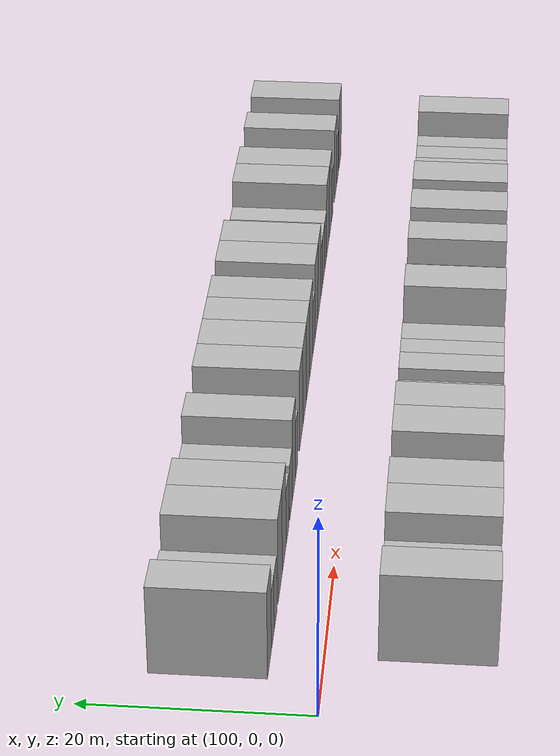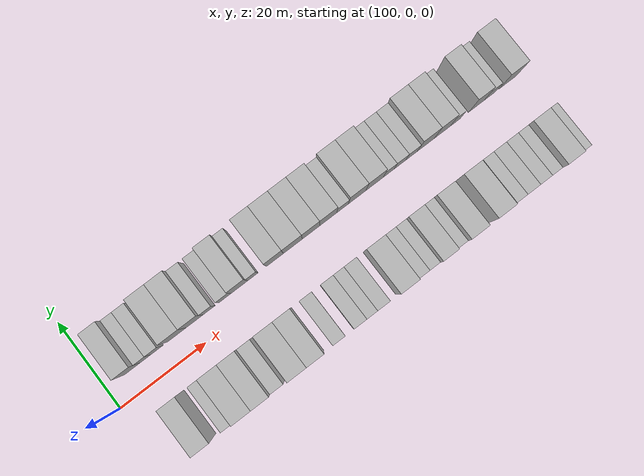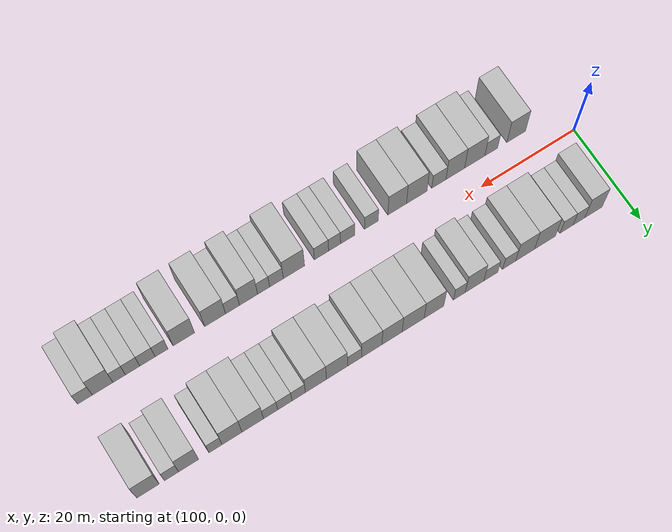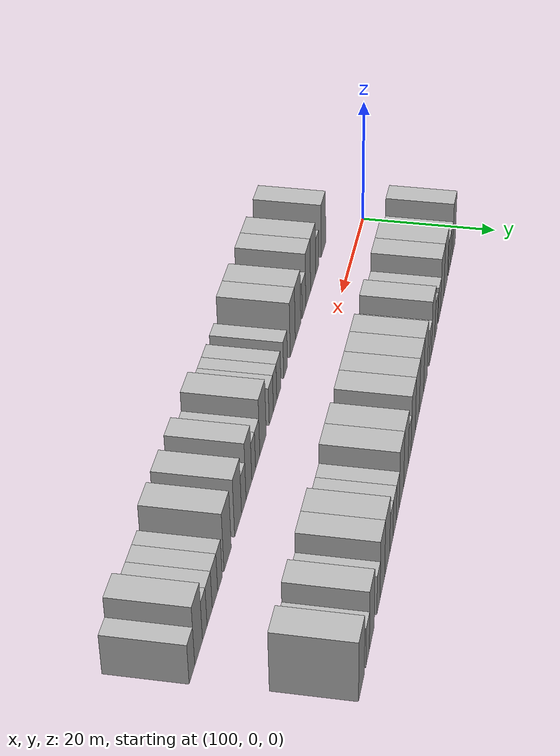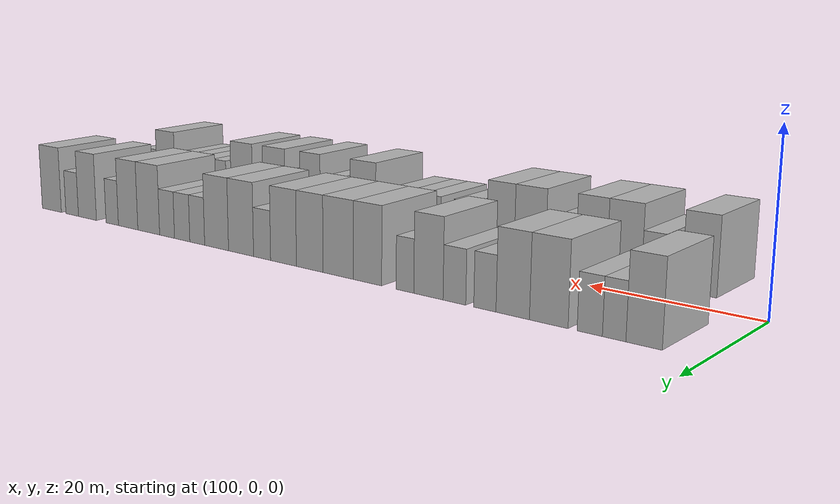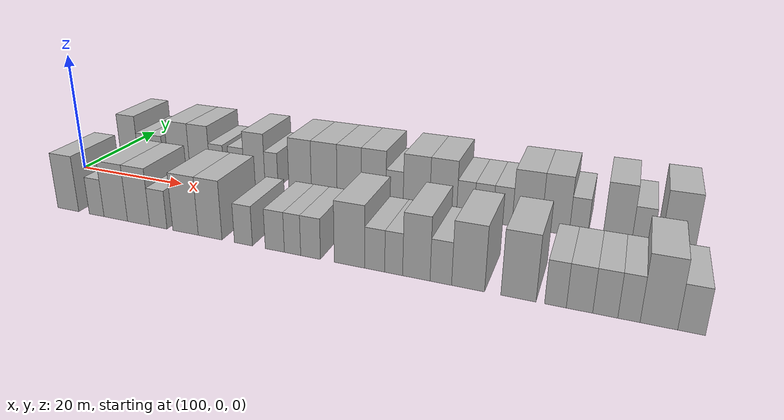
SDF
<sdf version="1.6">
 <world name="default">
  <model name="building_25">
   <static>1</static>
   <pose>106.1985 9.5000 0 0.000000 0.000000 1.570796</pose>
   <link name="link">
    <pose>0 0 4.50 0 0 0</pose>
    <collision name="collision"><geometry><box><size>10.0000 3.7347 9.0000</size></box></geometry></collision>
    <visual name="visual">
     <cast_shadows>0</cast_shadows>
     <geometry><box><size>10.0000 3.7347 9.0000</size></box></geometry>
     <material>
      <script>
       <uri>model://HANNAS_wall/materials/scripts</uri>
       <uri>model://HANNAS_wall/materials/textures</uri>
       <name>vrc/HANNAS_wall</name>
      </script>
     </material>
    </visual>
   </link>
  </model>
  <model name="building_26">
   <static>1</static>
   <pose>109.3079 9.5000 0 0.000000 0.000000 1.570796</pose>
   <link name="link">
    <pose>0 0 3.00 0 0 0</pose>
    <collision name="collision"><geometry><box><size>10.0000 2.4841 6.0000</size></box></geometry></collision>
    <visual name="visual">
     <cast_shadows>0</cast_shadows>
     <geometry><box><size>10.0000 2.4841 6.0000</size></box></geometry>
     <material>
      <script>
       <uri>model://HANNAS_wall/materials/scripts</uri>
       <uri>model://HANNAS_wall/materials/textures</uri>
       <name>vrc/HANNAS_wall</name>
      </script>
     </material>
    </visual>
   </link>
  </model>
  <model name="building_27">
   <static>1</static>
   <pose>111.9256 9.5000 0 0.000000 0.000000 1.570796</pose>
   <link name="link">
    <pose>0 0 3.00 0 0 0</pose>
    <collision name="collision"><geometry><box><size>10.0000 2.7511 6.0000</size></box></geometry></collision>
    <visual name="visual">
     <cast_shadows>0</cast_shadows>
     <geometry><box><size>10.0000 2.7511 6.0000</size></box></geometry>
     <material>
      <script>
       <uri>model://HANNAS_wall/materials/scripts</uri>
       <uri>model://HANNAS_wall/materials/textures</uri>
       <name>vrc/HANNAS_wall</name>
      </script>
     </material>
    </visual>
   </link>
  </model>
  <model name="building_28">
   <static>1</static>
   <pose>116.5041 9.5000 0 0.000000 0.000000 1.570796</pose>
   <link name="link">
    <pose>0 0 4.50 0 0 0</pose>
    <collision name="collision"><geometry><box><size>10.0000 4.4059 9.0000</size></box></geometry></collision>
    <visual name="visual">
     <cast_shadows>0</cast_shadows>
     <geometry><box><size>10.0000 4.4059 9.0000</size></box></geometry>
     <material>
      <script>
       <uri>model://HANNAS_wall/materials/scripts</uri>
       <uri>model://HANNAS_wall/materials/textures</uri>
       <name>vrc/HANNAS_wall</name>
      </script>
     </material>
    </visual>
   </link>
  </model>
  <model name="building_29">
   <static>1</static>
   <pose>120.6980 9.5000 0 0.000000 0.000000 1.570796</pose>
   <link name="link">
    <pose>0 0 4.50 0 0 0</pose>
    <collision name="collision"><geometry><box><size>10.0000 3.9819 9.0000</size></box></geometry></collision>
    <visual name="visual">
     <cast_shadows>0</cast_shadows>
     <geometry><box><size>10.0000 3.9819 9.0000</size></box></geometry>
     <material>
      <script>
       <uri>model://HANNAS_wall/materials/scripts</uri>
       <uri>model://HANNAS_wall/materials/textures</uri>
       <name>vrc/HANNAS_wall</name>
      </script>
     </material>
    </visual>
   </link>
  </model>
  <model name="building_30">
   <static>1</static>
   <pose>124.0550 9.5000 0 0.000000 0.000000 1.570796</pose>
   <link name="link">
    <pose>0 0 3.00 0 0 0</pose>
    <collision name="collision"><geometry><box><size>10.0000 2.7321 6.0000</size></box></geometry></collision>
    <visual name="visual">
     <cast_shadows>0</cast_shadows>
     <geometry><box><size>10.0000 2.7321 6.0000</size></box></geometry>
     <material>
      <script>
       <uri>model://HANNAS_wall/materials/scripts</uri>
       <uri>model://HANNAS_wall/materials/textures</uri>
       <name>vrc/HANNAS_wall</name>
      </script>
     </material>
    </visual>
   </link>
  </model>
  <model name="building_31">
   <static>1</static>
   <pose>127.8706 9.5000 0 0.000000 0.000000 1.570796</pose>
   <link name="link">
    <pose>0 0 3.00 0 0 0</pose>
    <collision name="collision"><geometry><box><size>10.0000 2.8991 6.0000</size></box></geometry></collision>
    <visual name="visual">
     <cast_shadows>0</cast_shadows>
     <geometry><box><size>10.0000 2.8991 6.0000</size></box></geometry>
     <material>
      <script>
       <uri>model://HANNAS_wall/materials/scripts</uri>
       <uri>model://HANNAS_wall/materials/textures</uri>
       <name>vrc/HANNAS_wall</name>
      </script>
     </material>
    </visual>
   </link>
  </model>
  <model name="building_32">
   <static>1</static>
   <pose>131.2488 9.5000 0 0.000000 0.000000 1.570796</pose>
   <link name="link">
    <pose>0 0 4.50 0 0 0</pose>
    <collision name="collision"><geometry><box><size>10.0000 3.8573 9.0000</size></box></geometry></collision>
    <visual name="visual">
     <cast_shadows>0</cast_shadows>
     <geometry><box><size>10.0000 3.8573 9.0000</size></box></geometry>
     <material>
      <script>
       <uri>model://HANNAS_wall/materials/scripts</uri>
       <uri>model://HANNAS_wall/materials/textures</uri>
       <name>vrc/HANNAS_wall</name>
      </script>
     </material>
    </visual>
   </link>
  </model>
  <model name="building_33">
   <static>1</static>
   <pose>134.3775 9.5000 0 0.000000 0.000000 1.570796</pose>
   <link name="link">
    <pose>0 0 3.00 0 0 0</pose>
    <collision name="collision"><geometry><box><size>10.0000 2.4002 6.0000</size></box></geometry></collision>
    <visual name="visual">
     <cast_shadows>0</cast_shadows>
     <geometry><box><size>10.0000 2.4002 6.0000</size></box></geometry>
     <material>
      <script>
       <uri>model://HANNAS_wall/materials/scripts</uri>
       <uri>model://HANNAS_wall/materials/textures</uri>
       <name>vrc/HANNAS_wall</name>
      </script>
     </material>
    </visual>
   </link>
  </model>
  <model name="building_34">
   <static>1</static>
   <pose>139.5908 9.5000 0 0.000000 0.000000 1.570796</pose>
   <link name="link">
    <pose>0 0 4.50 0 0 0</pose>
    <collision name="collision"><geometry><box><size>10.0000 4.0264 9.0000</size></box></geometry></collision>
    <visual name="visual">
     <cast_shadows>0</cast_shadows>
     <geometry><box><size>10.0000 4.0264 9.0000</size></box></geometry>
     <material>
      <script>
       <uri>model://HANNAS_wall/materials/scripts</uri>
       <uri>model://HANNAS_wall/materials/textures</uri>
       <name>vrc/HANNAS_wall</name>
      </script>
     </material>
    </visual>
   </link>
  </model>
  <model name="building_35">
   <static>1</static>
   <pose>143.8461 9.5000 0 0.000000 0.000000 1.570796</pose>
   <link name="link">
    <pose>0 0 4.50 0 0 0</pose>
    <collision name="collision"><geometry><box><size>10.0000 4.4843 9.0000</size></box></geometry></collision>
    <visual name="visual">
     <cast_shadows>0</cast_shadows>
     <geometry><box><size>10.0000 4.4843 9.0000</size></box></geometry>
     <material>
      <script>
       <uri>model://HANNAS_wall/materials/scripts</uri>
       <uri>model://HANNAS_wall/materials/textures</uri>
       <name>vrc/HANNAS_wall</name>
      </script>
     </material>
    </visual>
   </link>
  </model>
  <model name="building_36">
   <static>1</static>
   <pose>148.1364 9.5000 0 0.000000 0.000000 1.570796</pose>
   <link name="link">
    <pose>0 0 4.50 0 0 0</pose>
    <collision name="collision"><geometry><box><size>10.0000 4.0963 9.0000</size></box></geometry></collision>
    <visual name="visual">
     <cast_shadows>0</cast_shadows>
     <geometry><box><size>10.0000 4.0963 9.0000</size></box></geometry>
     <material>
      <script>
       <uri>model://HANNAS_wall/materials/scripts</uri>
       <uri>model://HANNAS_wall/materials/textures</uri>
       <name>vrc/HANNAS_wall</name>
      </script>
     </material>
    </visual>
   </link>
  </model>
  <model name="building_37">
   <static>1</static>
   <pose>152.2418 9.5000 0 0.000000 0.000000 1.570796</pose>
   <link name="link">
    <pose>0 0 4.50 0 0 0</pose>
    <collision name="collision"><geometry><box><size>10.0000 4.1145 9.0000</size></box></geometry></collision>
    <visual name="visual">
     <cast_shadows>0</cast_shadows>
     <geometry><box><size>10.0000 4.1145 9.0000</size></box></geometry>
     <material>
      <script>
       <uri>model://HANNAS_wall/materials/scripts</uri>
       <uri>model://HANNAS_wall/materials/textures</uri>
       <name>vrc/HANNAS_wall</name>
      </script>
     </material>
    </visual>
   </link>
  </model>
  <model name="building_38">
   <static>1</static>
   <pose>155.6980 9.5000 0 0.000000 0.000000 1.570796</pose>
   <link name="link">
    <pose>0 0 3.00 0 0 0</pose>
    <collision name="collision"><geometry><box><size>10.0000 2.7979 6.0000</size></box></geometry></collision>
    <visual name="visual">
     <cast_shadows>0</cast_shadows>
     <geometry><box><size>10.0000 2.7979 6.0000</size></box></geometry>
     <material>
      <script>
       <uri>model://HANNAS_wall/materials/scripts</uri>
       <uri>model://HANNAS_wall/materials/textures</uri>
       <name>vrc/HANNAS_wall</name>
      </script>
     </material>
    </visual>
   </link>
  </model>
  <model name="building_39">
   <static>1</static>
   <pose>159.2119 9.5000 0 0.000000 0.000000 1.570796</pose>
   <link name="link">
    <pose>0 0 4.50 0 0 0</pose>
    <collision name="collision"><geometry><box><size>10.0000 4.2299 9.0000</size></box></geometry></collision>
    <visual name="visual">
     <cast_shadows>0</cast_shadows>
     <geometry><box><size>10.0000 4.2299 9.0000</size></box></geometry>
     <material>
      <script>
       <uri>model://HANNAS_wall/materials/scripts</uri>
       <uri>model://HANNAS_wall/materials/textures</uri>
       <name>vrc/HANNAS_wall</name>
      </script>
     </material>
    </visual>
   </link>
  </model>
  <model name="building_40">
   <static>1</static>
   <pose>163.4170 9.5000 0 0.000000 0.000000 1.570796</pose>
   <link name="link">
    <pose>0 0 4.50 0 0 0</pose>
    <collision name="collision"><geometry><box><size>10.0000 4.1805 9.0000</size></box></geometry></collision>
    <visual name="visual">
     <cast_shadows>0</cast_shadows>
     <geometry><box><size>10.0000 4.1805 9.0000</size></box></geometry>
     <material>
      <script>
       <uri>model://HANNAS_wall/materials/scripts</uri>
       <uri>model://HANNAS_wall/materials/textures</uri>
       <name>vrc/HANNAS_wall</name>
      </script>
     </material>
    </visual>
   </link>
  </model>
  <model name="building_41">
   <static>1</static>
   <pose>166.8425 9.5000 0 0.000000 0.000000 1.570796</pose>
   <link name="link">
    <pose>0 0 3.00 0 0 0</pose>
    <collision name="collision"><geometry><box><size>10.0000 2.6705 6.0000</size></box></geometry></collision>
    <visual name="visual">
     <cast_shadows>0</cast_shadows>
     <geometry><box><size>10.0000 2.6705 6.0000</size></box></geometry>
     <material>
      <script>
       <uri>model://HANNAS_wall/materials/scripts</uri>
       <uri>model://HANNAS_wall/materials/textures</uri>
       <name>vrc/HANNAS_wall</name>
      </script>
     </material>
    </visual>
   </link>
  </model>
  <model name="building_42">
   <static>1</static>
   <pose>169.5877 9.5000 0 0.000000 0.000000 1.570796</pose>
   <link name="link">
    <pose>0 0 3.00 0 0 0</pose>
    <collision name="collision"><geometry><box><size>10.0000 2.8198 6.0000</size></box></geometry></collision>
    <visual name="visual">
     <cast_shadows>0</cast_shadows>
     <geometry><box><size>10.0000 2.8198 6.0000</size></box></geometry>
     <material>
      <script>
       <uri>model://HANNAS_wall/materials/scripts</uri>
       <uri>model://HANNAS_wall/materials/textures</uri>
       <name>vrc/HANNAS_wall</name>
      </script>
     </material>
    </visual>
   </link>
  </model>
  <model name="building_43">
   <static>1</static>
   <pose>172.3979 9.5000 0 0.000000 0.000000 1.570796</pose>
   <link name="link">
    <pose>0 0 3.00 0 0 0</pose>
    <collision name="collision"><geometry><box><size>10.0000 2.8007 6.0000</size></box></geometry></collision>
    <visual name="visual">
     <cast_shadows>0</cast_shadows>
     <geometry><box><size>10.0000 2.8007 6.0000</size></box></geometry>
     <material>
      <script>
       <uri>model://HANNAS_wall/materials/scripts</uri>
       <uri>model://HANNAS_wall/materials/textures</uri>
       <name>vrc/HANNAS_wall</name>
      </script>
     </material>
    </visual>
   </link>
  </model>
  <model name="building_44">
   <static>1</static>
   <pose>175.9020 9.5000 0 0.000000 0.000000 1.570796</pose>
   <link name="link">
    <pose>0 0 4.50 0 0 0</pose>
    <collision name="collision"><geometry><box><size>10.0000 4.2075 9.0000</size></box></geometry></collision>
    <visual name="visual">
     <cast_shadows>0</cast_shadows>
     <geometry><box><size>10.0000 4.2075 9.0000</size></box></geometry>
     <material>
      <script>
       <uri>model://HANNAS_wall/materials/scripts</uri>
       <uri>model://HANNAS_wall/materials/textures</uri>
       <name>vrc/HANNAS_wall</name>
      </script>
     </material>
    </visual>
   </link>
  </model>
  <model name="building_45">
   <static>1</static>
   <pose>179.9502 9.5000 0 0.000000 0.000000 1.570796</pose>
   <link name="link">
    <pose>0 0 4.50 0 0 0</pose>
    <collision name="collision"><geometry><box><size>10.0000 3.8887 9.0000</size></box></geometry></collision>
    <visual name="visual">
     <cast_shadows>0</cast_shadows>
     <geometry><box><size>10.0000 3.8887 9.0000</size></box></geometry>
     <material>
      <script>
       <uri>model://HANNAS_wall/materials/scripts</uri>
       <uri>model://HANNAS_wall/materials/textures</uri>
       <name>vrc/HANNAS_wall</name>
      </script>
     </material>
    </visual>
   </link>
  </model>
  <model name="building_46">
   <static>1</static>
   <pose>183.1584 9.5000 0 0.000000 0.000000 1.570796</pose>
   <link name="link">
    <pose>0 0 3.00 0 0 0</pose>
    <collision name="collision"><geometry><box><size>10.0000 2.5278 6.0000</size></box></geometry></collision>
    <visual name="visual">
     <cast_shadows>0</cast_shadows>
     <geometry><box><size>10.0000 2.5278 6.0000</size></box></geometry>
     <material>
      <script>
       <uri>model://HANNAS_wall/materials/scripts</uri>
       <uri>model://HANNAS_wall/materials/textures</uri>
       <name>vrc/HANNAS_wall</name>
      </script>
     </material>
    </visual>
   </link>
  </model>
  <model name="building_47">
   <static>1</static>
   <pose>188.3352 9.5000 0 0.000000 0.000000 1.570796</pose>
   <link name="link">
    <pose>0 0 4.50 0 0 0</pose>
    <collision name="collision"><geometry><box><size>10.0000 3.8258 9.0000</size></box></geometry></collision>
    <visual name="visual">
     <cast_shadows>0</cast_shadows>
     <geometry><box><size>10.0000 3.8258 9.0000</size></box></geometry>
     <material>
      <script>
       <uri>model://HANNAS_wall/materials/scripts</uri>
       <uri>model://HANNAS_wall/materials/textures</uri>
       <name>vrc/HANNAS_wall</name>
      </script>
     </material>
    </visual>
   </link>
  </model>
  <model name="building_48">
   <static>1</static>
   <pose>191.6173 9.5000 0 0.000000 0.000000 1.570796</pose>
   <link name="link">
    <pose>0 0 3.00 0 0 0</pose>
    <collision name="collision"><geometry><box><size>10.0000 2.7383 6.0000</size></box></geometry></collision>
    <visual name="visual">
     <cast_shadows>0</cast_shadows>
     <geometry><box><size>10.0000 2.7383 6.0000</size></box></geometry>
     <material>
      <script>
       <uri>model://HANNAS_wall/materials/scripts</uri>
       <uri>model://HANNAS_wall/materials/textures</uri>
       <name>vrc/HANNAS_wall</name>
      </script>
     </material>
    </visual>
   </link>
  </model>
  <model name="building_49">
   <static>1</static>
   <pose>196.1230 9.5000 0 0.000000 0.000000 1.570796</pose>
   <link name="link">
    <pose>0 0 4.50 0 0 0</pose>
    <collision name="collision"><geometry><box><size>10.0000 4.2729 9.0000</size></box></geometry></collision>
    <visual name="visual">
     <cast_shadows>0</cast_shadows>
     <geometry><box><size>10.0000 4.2729 9.0000</size></box></geometry>
     <material>
      <script>
       <uri>model://HANNAS_wall/materials/scripts</uri>
       <uri>model://HANNAS_wall/materials/textures</uri>
       <name>vrc/HANNAS_wall</name>
      </script>
     </material>
    </visual>
   </link>
  </model>
  <model name="building_75">
   <static>1</static>
   <pose>109.4221 -9.5000 0 0.000000 0.000000 1.570796</pose>
   <link name="link">
    <pose>0 0 4.50 0 0 0</pose>
    <collision name="collision"><geometry><box><size>10.0000 3.9978 9.0000</size></box></geometry></collision>
    <visual name="visual">
     <cast_shadows>0</cast_shadows>
     <geometry><box><size>10.0000 3.9978 9.0000</size></box></geometry>
     <material>
      <script>
       <uri>model://HANNAS_wall/materials/scripts</uri>
       <uri>model://HANNAS_wall/materials/textures</uri>
       <name>vrc/HANNAS_wall</name>
      </script>
     </material>
    </visual>
   </link>
  </model>
  <model name="building_76">
   <static>1</static>
   <pose>114.7950 -9.5000 0 0.000000 0.000000 1.570796</pose>
   <link name="link">
    <pose>0 0 3.00 0 0 0</pose>
    <collision name="collision"><geometry><box><size>10.0000 2.7479 6.0000</size></box></geometry></collision>
    <visual name="visual">
     <cast_shadows>0</cast_shadows>
     <geometry><box><size>10.0000 2.7479 6.0000</size></box></geometry>
     <material>
      <script>
       <uri>model://HANNAS_wall/materials/scripts</uri>
       <uri>model://HANNAS_wall/materials/textures</uri>
       <name>vrc/HANNAS_wall</name>
      </script>
     </material>
    </visual>
   </link>
  </model>
  <model name="building_77">
   <static>1</static>
   <pose>118.3128 -9.5000 0 0.000000 0.000000 1.570796</pose>
   <link name="link">
    <pose>0 0 4.50 0 0 0</pose>
    <collision name="collision"><geometry><box><size>10.0000 4.2877 9.0000</size></box></geometry></collision>
    <visual name="visual">
     <cast_shadows>0</cast_shadows>
     <geometry><box><size>10.0000 4.2877 9.0000</size></box></geometry>
     <material>
      <script>
       <uri>model://HANNAS_wall/materials/scripts</uri>
       <uri>model://HANNAS_wall/materials/textures</uri>
       <name>vrc/HANNAS_wall</name>
      </script>
     </material>
    </visual>
   </link>
  </model>
  <model name="building_78">
   <static>1</static>
   <pose>122.4323 -9.5000 0 0.000000 0.000000 1.570796</pose>
   <link name="link">
    <pose>0 0 4.50 0 0 0</pose>
    <collision name="collision"><geometry><box><size>10.0000 3.9514 9.0000</size></box></geometry></collision>
    <visual name="visual">
     <cast_shadows>0</cast_shadows>
     <geometry><box><size>10.0000 3.9514 9.0000</size></box></geometry>
     <material>
      <script>
       <uri>model://HANNAS_wall/materials/scripts</uri>
       <uri>model://HANNAS_wall/materials/textures</uri>
       <name>vrc/HANNAS_wall</name>
      </script>
     </material>
    </visual>
   </link>
  </model>
  <model name="building_79">
   <static>1</static>
   <pose>125.9056 -9.5000 0 0.000000 0.000000 1.570796</pose>
   <link name="link">
    <pose>0 0 3.00 0 0 0</pose>
    <collision name="collision"><geometry><box><size>10.0000 2.9952 6.0000</size></box></geometry></collision>
    <visual name="visual">
     <cast_shadows>0</cast_shadows>
     <geometry><box><size>10.0000 2.9952 6.0000</size></box></geometry>
     <material>
      <script>
       <uri>model://HANNAS_wall/materials/scripts</uri>
       <uri>model://HANNAS_wall/materials/textures</uri>
       <name>vrc/HANNAS_wall</name>
      </script>
     </material>
    </visual>
   </link>
  </model>
  <model name="building_80">
   <static>1</static>
   <pose>130.5462 -9.5000 0 0.000000 0.000000 1.570796</pose>
   <link name="link">
    <pose>0 0 4.50 0 0 0</pose>
    <collision name="collision"><geometry><box><size>10.0000 4.2860 9.0000</size></box></geometry></collision>
    <visual name="visual">
     <cast_shadows>0</cast_shadows>
     <geometry><box><size>10.0000 4.2860 9.0000</size></box></geometry>
     <material>
      <script>
       <uri>model://HANNAS_wall/materials/scripts</uri>
       <uri>model://HANNAS_wall/materials/textures</uri>
       <name>vrc/HANNAS_wall</name>
      </script>
     </material>
    </visual>
   </link>
  </model>
  <model name="building_81">
   <static>1</static>
   <pose>134.6389 -9.5000 0 0.000000 0.000000 1.570796</pose>
   <link name="link">
    <pose>0 0 4.50 0 0 0</pose>
    <collision name="collision"><geometry><box><size>10.0000 3.8993 9.0000</size></box></geometry></collision>
    <visual name="visual">
     <cast_shadows>0</cast_shadows>
     <geometry><box><size>10.0000 3.8993 9.0000</size></box></geometry>
     <material>
      <script>
       <uri>model://HANNAS_wall/materials/scripts</uri>
       <uri>model://HANNAS_wall/materials/textures</uri>
       <name>vrc/HANNAS_wall</name>
      </script>
     </material>
    </visual>
   </link>
  </model>
  <model name="building_82">
   <static>1</static>
   <pose>140.0130 -9.5000 0 0.000000 0.000000 1.570796</pose>
   <link name="link">
    <pose>0 0 3.00 0 0 0</pose>
    <collision name="collision"><geometry><box><size>10.0000 2.8490 6.0000</size></box></geometry></collision>
    <visual name="visual">
     <cast_shadows>0</cast_shadows>
     <geometry><box><size>10.0000 2.8490 6.0000</size></box></geometry>
     <material>
      <script>
       <uri>model://HANNAS_wall/materials/scripts</uri>
       <uri>model://HANNAS_wall/materials/textures</uri>
       <name>vrc/HANNAS_wall</name>
      </script>
     </material>
    </visual>
   </link>
  </model>
  <model name="building_83">
   <static>1</static>
   <pose>144.9011 -9.5000 0 0.000000 0.000000 1.570796</pose>
   <link name="link">
    <pose>0 0 3.00 0 0 0</pose>
    <collision name="collision"><geometry><box><size>10.0000 2.9273 6.0000</size></box></geometry></collision>
    <visual name="visual">
     <cast_shadows>0</cast_shadows>
     <geometry><box><size>10.0000 2.9273 6.0000</size></box></geometry>
     <material>
      <script>
       <uri>model://HANNAS_wall/materials/scripts</uri>
       <uri>model://HANNAS_wall/materials/textures</uri>
       <name>vrc/HANNAS_wall</name>
      </script>
     </material>
    </visual>
   </link>
  </model>
  <model name="building_84">
   <static>1</static>
   <pose>147.5922 -9.5000 0 0.000000 0.000000 1.570796</pose>
   <link name="link">
    <pose>0 0 3.00 0 0 0</pose>
    <collision name="collision"><geometry><box><size>10.0000 2.4548 6.0000</size></box></geometry></collision>
    <visual name="visual">
     <cast_shadows>0</cast_shadows>
     <geometry><box><size>10.0000 2.4548 6.0000</size></box></geometry>
     <material>
      <script>
       <uri>model://HANNAS_wall/materials/scripts</uri>
       <uri>model://HANNAS_wall/materials/textures</uri>
       <name>vrc/HANNAS_wall</name>
      </script>
     </material>
    </visual>
   </link>
  </model>
  <model name="building_85">
   <static>1</static>
   <pose>150.2743 -9.5000 0 0.000000 0.000000 1.570796</pose>
   <link name="link">
    <pose>0 0 3.00 0 0 0</pose>
    <collision name="collision"><geometry><box><size>10.0000 2.9093 6.0000</size></box></geometry></collision>
    <visual name="visual">
     <cast_shadows>0</cast_shadows>
     <geometry><box><size>10.0000 2.9093 6.0000</size></box></geometry>
     <material>
      <script>
       <uri>model://HANNAS_wall/materials/scripts</uri>
       <uri>model://HANNAS_wall/materials/textures</uri>
       <name>vrc/HANNAS_wall</name>
      </script>
     </material>
    </visual>
   </link>
  </model>
  <model name="building_86">
   <static>1</static>
   <pose>155.8796 -9.5000 0 0.000000 0.000000 1.570796</pose>
   <link name="link">
    <pose>0 0 4.50 0 0 0</pose>
    <collision name="collision"><geometry><box><size>10.0000 4.3014 9.0000</size></box></geometry></collision>
    <visual name="visual">
     <cast_shadows>0</cast_shadows>
     <geometry><box><size>10.0000 4.3014 9.0000</size></box></geometry>
     <material>
      <script>
       <uri>model://HANNAS_wall/materials/scripts</uri>
       <uri>model://HANNAS_wall/materials/textures</uri>
       <name>vrc/HANNAS_wall</name>
      </script>
     </material>
    </visual>
   </link>
  </model>
  <model name="building_87">
   <static>1</static>
   <pose>159.4169 -9.5000 0 0.000000 0.000000 1.570796</pose>
   <link name="link">
    <pose>0 0 3.00 0 0 0</pose>
    <collision name="collision"><geometry><box><size>10.0000 2.7732 6.0000</size></box></geometry></collision>
    <visual name="visual">
     <cast_shadows>0</cast_shadows>
     <geometry><box><size>10.0000 2.7732 6.0000</size></box></geometry>
     <material>
      <script>
       <uri>model://HANNAS_wall/materials/scripts</uri>
       <uri>model://HANNAS_wall/materials/textures</uri>
       <name>vrc/HANNAS_wall</name>
      </script>
     </material>
    </visual>
   </link>
  </model>
  <model name="building_88">
   <static>1</static>
   <pose>162.0172 -9.5000 0 0.000000 0.000000 1.570796</pose>
   <link name="link">
    <pose>0 0 3.00 0 0 0</pose>
    <collision name="collision"><geometry><box><size>10.0000 2.4274 6.0000</size></box></geometry></collision>
    <visual name="visual">
     <cast_shadows>0</cast_shadows>
     <geometry><box><size>10.0000 2.4274 6.0000</size></box></geometry>
     <material>
      <script>
       <uri>model://HANNAS_wall/materials/scripts</uri>
       <uri>model://HANNAS_wall/materials/textures</uri>
       <name>vrc/HANNAS_wall</name>
      </script>
     </material>
    </visual>
   </link>
  </model>
  <model name="building_89">
   <static>1</static>
   <pose>165.0512 -9.5000 0 0.000000 0.000000 1.570796</pose>
   <link name="link">
    <pose>0 0 4.50 0 0 0</pose>
    <collision name="collision"><geometry><box><size>10.0000 3.6405 9.0000</size></box></geometry></collision>
    <visual name="visual">
     <cast_shadows>0</cast_shadows>
     <geometry><box><size>10.0000 3.6405 9.0000</size></box></geometry>
     <material>
      <script>
       <uri>model://HANNAS_wall/materials/scripts</uri>
       <uri>model://HANNAS_wall/materials/textures</uri>
       <name>vrc/HANNAS_wall</name>
      </script>
     </material>
    </visual>
   </link>
  </model>
  <model name="building_90">
   <static>1</static>
   <pose>168.2660 -9.5000 0 0.000000 0.000000 1.570796</pose>
   <link name="link">
    <pose>0 0 3.00 0 0 0</pose>
    <collision name="collision"><geometry><box><size>10.0000 2.7891 6.0000</size></box></geometry></collision>
    <visual name="visual">
     <cast_shadows>0</cast_shadows>
     <geometry><box><size>10.0000 2.7891 6.0000</size></box></geometry>
     <material>
      <script>
       <uri>model://HANNAS_wall/materials/scripts</uri>
       <uri>model://HANNAS_wall/materials/textures</uri>
       <name>vrc/HANNAS_wall</name>
      </script>
     </material>
    </visual>
   </link>
  </model>
  <model name="building_91">
   <static>1</static>
   <pose>171.7435 -9.5000 0 0.000000 0.000000 1.570796</pose>
   <link name="link">
    <pose>0 0 4.50 0 0 0</pose>
    <collision name="collision"><geometry><box><size>10.0000 4.1657 9.0000</size></box></geometry></collision>
    <visual name="visual">
     <cast_shadows>0</cast_shadows>
     <geometry><box><size>10.0000 4.1657 9.0000</size></box></geometry>
     <material>
      <script>
       <uri>model://HANNAS_wall/materials/scripts</uri>
       <uri>model://HANNAS_wall/materials/textures</uri>
       <name>vrc/HANNAS_wall</name>
      </script>
     </material>
    </visual>
   </link>
  </model>
  <model name="building_92">
   <static>1</static>
   <pose>177.9454 -9.5000 0 0.000000 0.000000 1.570796</pose>
   <link name="link">
    <pose>0 0 4.50 0 0 0</pose>
    <collision name="collision"><geometry><box><size>10.0000 4.2381 9.0000</size></box></geometry></collision>
    <visual name="visual">
     <cast_shadows>0</cast_shadows>
     <geometry><box><size>10.0000 4.2381 9.0000</size></box></geometry>
     <material>
      <script>
       <uri>model://HANNAS_wall/materials/scripts</uri>
       <uri>model://HANNAS_wall/materials/textures</uri>
       <name>vrc/HANNAS_wall</name>
      </script>
     </material>
    </visual>
   </link>
  </model>
  <model name="building_93">
   <static>1</static>
   <pose>182.3288 -9.5000 0 0.000000 0.000000 1.570796</pose>
   <link name="link">
    <pose>0 0 3.00 0 0 0</pose>
    <collision name="collision"><geometry><box><size>10.0000 2.5287 6.0000</size></box></geometry></collision>
    <visual name="visual">
     <cast_shadows>0</cast_shadows>
     <geometry><box><size>10.0000 2.5287 6.0000</size></box></geometry>
     <material>
      <script>
       <uri>model://HANNAS_wall/materials/scripts</uri>
       <uri>model://HANNAS_wall/materials/textures</uri>
       <name>vrc/HANNAS_wall</name>
      </script>
     </material>
    </visual>
   </link>
  </model>
  <model name="building_94">
   <static>1</static>
   <pose>185.0925 -9.5000 0 0.000000 0.000000 1.570796</pose>
   <link name="link">
    <pose>0 0 3.00 0 0 0</pose>
    <collision name="collision"><geometry><box><size>10.0000 2.9987 6.0000</size></box></geometry></collision>
    <visual name="visual">
     <cast_shadows>0</cast_shadows>
     <geometry><box><size>10.0000 2.9987 6.0000</size></box></geometry>
     <material>
      <script>
       <uri>model://HANNAS_wall/materials/scripts</uri>
       <uri>model://HANNAS_wall/materials/textures</uri>
       <name>vrc/HANNAS_wall</name>
      </script>
     </material>
    </visual>
   </link>
  </model>
  <model name="building_95">
   <static>1</static>
   <pose>187.9871 -9.5000 0 0.000000 0.000000 1.570796</pose>
   <link name="link">
    <pose>0 0 3.00 0 0 0</pose>
    <collision name="collision"><geometry><box><size>10.0000 2.7905 6.0000</size></box></geometry></collision>
    <visual name="visual">
     <cast_shadows>0</cast_shadows>
     <geometry><box><size>10.0000 2.7905 6.0000</size></box></geometry>
     <material>
      <script>
       <uri>model://HANNAS_wall/materials/scripts</uri>
       <uri>model://HANNAS_wall/materials/textures</uri>
       <name>vrc/HANNAS_wall</name>
      </script>
     </material>
    </visual>
   </link>
  </model>
  <model name="building_96">
   <static>1</static>
   <pose>190.5952 -9.5000 0 0.000000 0.000000 1.570796</pose>
   <link name="link">
    <pose>0 0 3.00 0 0 0</pose>
    <collision name="collision"><geometry><box><size>10.0000 2.4257 6.0000</size></box></geometry></collision>
    <visual name="visual">
     <cast_shadows>0</cast_shadows>
     <geometry><box><size>10.0000 2.4257 6.0000</size></box></geometry>
     <material>
      <script>
       <uri>model://HANNAS_wall/materials/scripts</uri>
       <uri>model://HANNAS_wall/materials/textures</uri>
       <name>vrc/HANNAS_wall</name>
      </script>
     </material>
    </visual>
   </link>
  </model>
  <model name="building_97">
   <static>1</static>
   <pose>193.8033 -9.5000 0 0.000000 0.000000 1.570796</pose>
   <link name="link">
    <pose>0 0 4.50 0 0 0</pose>
    <collision name="collision"><geometry><box><size>10.0000 3.9906 9.0000</size></box></geometry></collision>
    <visual name="visual">
     <cast_shadows>0</cast_shadows>
     <geometry><box><size>10.0000 3.9906 9.0000</size></box></geometry>
     <material>
      <script>
       <uri>model://HANNAS_wall/materials/scripts</uri>
       <uri>model://HANNAS_wall/materials/textures</uri>
       <name>vrc/HANNAS_wall</name>
      </script>
     </material>
    </visual>
   </link>
  </model>
  <model name="building_98">
   <static>1</static>
   <pose>197.2305 -9.5000 0 0.000000 0.000000 1.570796</pose>
   <link name="link">
    <pose>0 0 3.00 0 0 0</pose>
    <collision name="collision"><geometry><box><size>10.0000 2.8636 6.0000</size></box></geometry></collision>
    <visual name="visual">
     <cast_shadows>0</cast_shadows>
     <geometry><box><size>10.0000 2.8636 6.0000</size></box></geometry>
     <material>
      <script>
       <uri>model://HANNAS_wall/materials/scripts</uri>
       <uri>model://HANNAS_wall/materials/textures</uri>
       <name>vrc/HANNAS_wall</name>
      </script>
     </material>
    </visual>
   </link>
  </model>
 </world>
</sdf>
